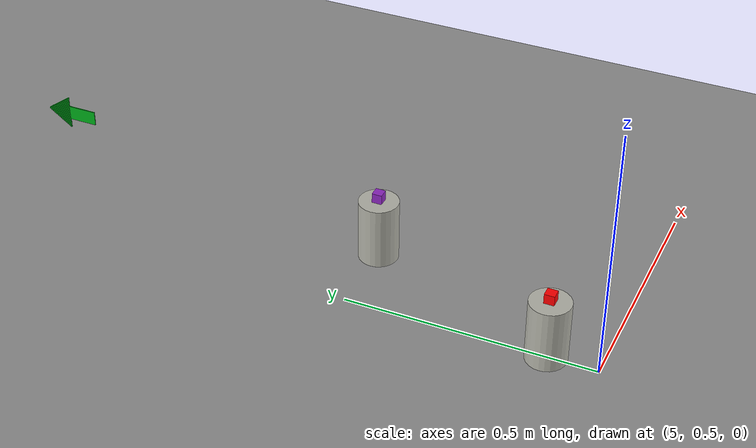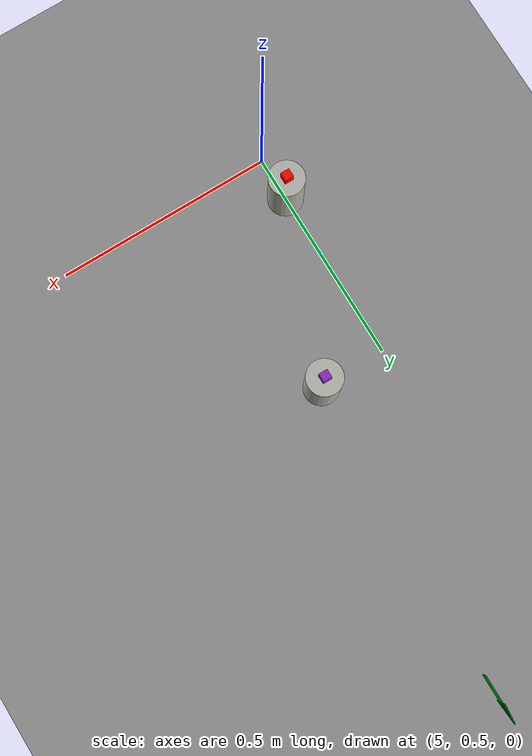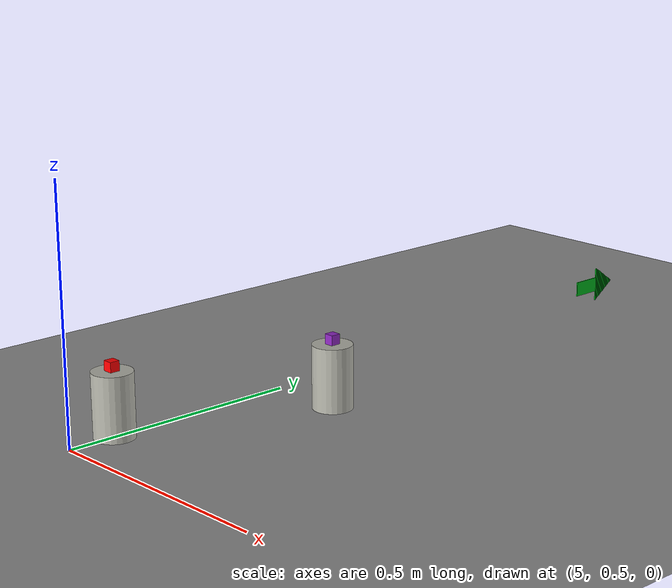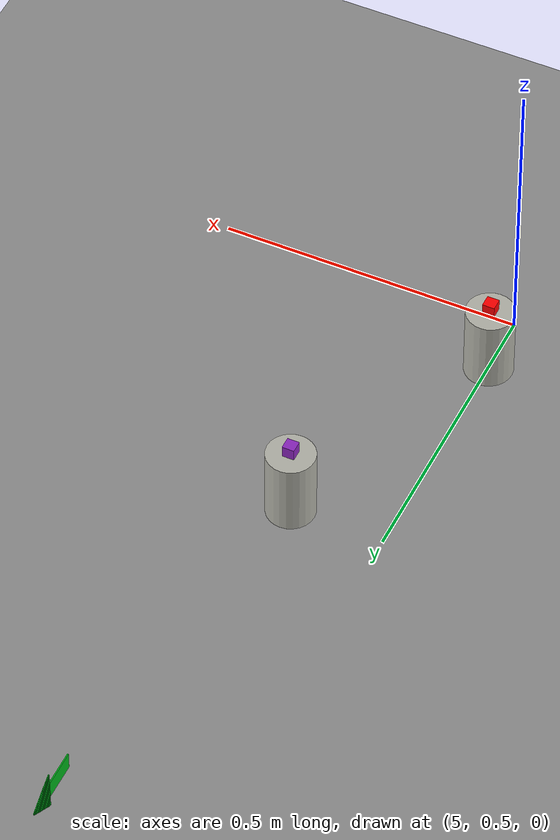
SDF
<sdf version="1.9">
 <world name="ros2_world">
  <model name="ground_plane">
   <static>true</static>
   <link name="link">
    <collision name="collision">
     <geometry><plane><normal>0 0 1</normal><size>30 30</size></plane></geometry>
    </collision>
    <visual name="visual">
     <geometry><plane><normal>0 0 1</normal><size>30 30</size></plane></geometry>
     <material><ambient>0.55 0.55 0.55 1</ambient><diffuse>0.55 0.55 0.55 1</diffuse></material>
    </visual>
   </link>
  </model>
  <model name="flechas">
   <static>true</static>
   <link name="flecha_14">
    <pose>5.1985 1.72 0.115 0 0 1.5708</pose>
    <visual name="p0">
     <pose>-0.025 0 0 0 0 0</pose>
     <geometry><box><size>0.06 0.002 0.03</size></box></geometry>
     <material><ambient>0 0.7 0.1 1</ambient><diffuse>0 0.7 0.1 1</diffuse></material>
    </visual>
    <visual name="p1">
     <pose>0.006 0 0 0 0 0</pose>
     <geometry><box><size>0.002 0.002 0.07</size></box></geometry>
     <material><ambient>0 0.7 0.1 1</ambient><diffuse>0 0.7 0.1 1</diffuse></material>
    </visual>
    <visual name="p2">
     <pose>0.008 0 0 0 0 0</pose>
     <geometry><box><size>0.002 0.002 0.0672</size></box></geometry>
     <material><ambient>0 0.7 0.1 1</ambient><diffuse>0 0.7 0.1 1</diffuse></material>
    </visual>
    <visual name="p3">
     <pose>0.01 0 0 0 0 0</pose>
     <geometry><box><size>0.002 0.002 0.0644</size></box></geometry>
     <material><ambient>0 0.7 0.1 1</ambient><diffuse>0 0.7 0.1 1</diffuse></material>
    </visual>
    <visual name="p4">
     <pose>0.012 0 0 0 0 0</pose>
     <geometry><box><size>0.002 0.002 0.0616</size></box></geometry>
     <material><ambient>0 0.7 0.1 1</ambient><diffuse>0 0.7 0.1 1</diffuse></material>
    </visual>
    <visual name="p5">
     <pose>0.014 0 0 0 0 0</pose>
     <geometry><box><size>0.002 0.002 0.0588</size></box></geometry>
     <material><ambient>0 0.7 0.1 1</ambient><diffuse>0 0.7 0.1 1</diffuse></material>
    </visual>
    <visual name="p6">
     <pose>0.016 0 0 0 0 0</pose>
     <geometry><box><size>0.002 0.002 0.056</size></box></geometry>
     <material><ambient>0 0.7 0.1 1</ambient><diffuse>0 0.7 0.1 1</diffuse></material>
    </visual>
    <visual name="p7">
     <pose>0.018 0 0 0 0 0</pose>
     <geometry><box><size>0.002 0.002 0.0532</size></box></geometry>
     <material><ambient>0 0.7 0.1 1</ambient><diffuse>0 0.7 0.1 1</diffuse></material>
    </visual>
    <visual name="p8">
     <pose>0.02 0 0 0 0 0</pose>
     <geometry><box><size>0.002 0.002 0.0504</size></box></geometry>
     <material><ambient>0 0.7 0.1 1</ambient><diffuse>0 0.7 0.1 1</diffuse></material>
    </visual>
    <visual name="p9">
     <pose>0.022 0 0 0 0 0</pose>
     <geometry><box><size>0.002 0.002 0.0476</size></box></geometry>
     <material><ambient>0 0.7 0.1 1</ambient><diffuse>0 0.7 0.1 1</diffuse></material>
    </visual>
    <visual name="p10">
     <pose>0.024 0 0 0 0 0</pose>
     <geometry><box><size>0.002 0.002 0.0448</size></box></geometry>
     <material><ambient>0 0.7 0.1 1</ambient><diffuse>0 0.7 0.1 1</diffuse></material>
    </visual>
    <visual name="p11">
     <pose>0.026 0 0 0 0 0</pose>
     <geometry><box><size>0.002 0.002 0.042</size></box></geometry>
     <material><ambient>0 0.7 0.1 1</ambient><diffuse>0 0.7 0.1 1</diffuse></material>
    </visual>
    <visual name="p12">
     <pose>0.028 0 0 0 0 0</pose>
     <geometry><box><size>0.002 0.002 0.0392</size></box></geometry>
     <material><ambient>0 0.7 0.1 1</ambient><diffuse>0 0.7 0.1 1</diffuse></material>
    </visual>
    <visual name="p13">
     <pose>0.03 0 0 0 0 0</pose>
     <geometry><box><size>0.002 0.002 0.0364</size></box></geometry>
     <material><ambient>0 0.7 0.1 1</ambient><diffuse>0 0.7 0.1 1</diffuse></material>
    </visual>
    <visual name="p14">
     <pose>0.032 0 0 0 0 0</pose>
     <geometry><box><size>0.002 0.002 0.0336</size></box></geometry>
     <material><ambient>0 0.7 0.1 1</ambient><diffuse>0 0.7 0.1 1</diffuse></material>
    </visual>
    <visual name="p15">
     <pose>0.034 0 0 0 0 0</pose>
     <geometry><box><size>0.002 0.002 0.0308</size></box></geometry>
     <material><ambient>0 0.7 0.1 1</ambient><diffuse>0 0.7 0.1 1</diffuse></material>
    </visual>
    <visual name="p16">
     <pose>0.036 0 0 0 0 0</pose>
     <geometry><box><size>0.002 0.002 0.028</size></box></geometry>
     <material><ambient>0 0.7 0.1 1</ambient><diffuse>0 0.7 0.1 1</diffuse></material>
    </visual>
    <visual name="p17">
     <pose>0.038 0 0 0 0 0</pose>
     <geometry><box><size>0.002 0.002 0.0252</size></box></geometry>
     <material><ambient>0 0.7 0.1 1</ambient><diffuse>0 0.7 0.1 1</diffuse></material>
    </visual>
    <visual name="p18">
     <pose>0.04 0 0 0 0 0</pose>
     <geometry><box><size>0.002 0.002 0.0224</size></box></geometry>
     <material><ambient>0 0.7 0.1 1</ambient><diffuse>0 0.7 0.1 1</diffuse></material>
    </visual>
    <visual name="p19">
     <pose>0.042 0 0 0 0 0</pose>
     <geometry><box><size>0.002 0.002 0.0196</size></box></geometry>
     <material><ambient>0 0.7 0.1 1</ambient><diffuse>0 0.7 0.1 1</diffuse></material>
    </visual>
    <visual name="p20">
     <pose>0.044 0 0 0 0 0</pose>
     <geometry><box><size>0.002 0.002 0.0168</size></box></geometry>
     <material><ambient>0 0.7 0.1 1</ambient><diffuse>0 0.7 0.1 1</diffuse></material>
    </visual>
    <visual name="p21">
     <pose>0.046 0 0 0 0 0</pose>
     <geometry><box><size>0.002 0.002 0.014</size></box></geometry>
     <material><ambient>0 0.7 0.1 1</ambient><diffuse>0 0.7 0.1 1</diffuse></material>
    </visual>
    <visual name="p22">
     <pose>0.048 0 0 0 0 0</pose>
     <geometry><box><size>0.002 0.002 0.0112</size></box></geometry>
     <material><ambient>0 0.7 0.1 1</ambient><diffuse>0 0.7 0.1 1</diffuse></material>
    </visual>
    <visual name="p23">
     <pose>0.05 0 0 0 0 0</pose>
     <geometry><box><size>0.002 0.002 0.0084</size></box></geometry>
     <material><ambient>0 0.7 0.1 1</ambient><diffuse>0 0.7 0.1 1</diffuse></material>
    </visual>
    <visual name="p24">
     <pose>0.052 0 0 0 0 0</pose>
     <geometry><box><size>0.002 0.002 0.0056</size></box></geometry>
     <material><ambient>0 0.7 0.1 1</ambient><diffuse>0 0.7 0.1 1</diffuse></material>
    </visual>
    <visual name="p25">
     <pose>0.054 0 0 0 0 0</pose>
     <geometry><box><size>0.002 0.002 0.0028</size></box></geometry>
     <material><ambient>0 0.7 0.1 1</ambient><diffuse>0 0.7 0.1 1</diffuse></material>
    </visual>
   </link>
  </model>
  <model name="cubo_rojo">
   <pose>5 0.6 0.1387 0 0 0</pose>
   <link name="link">
    <inertial>
     <mass>0.0099</mass>
     <inertia>
      <ixx>6.6000e-07</ixx>
      <iyy>6.6000e-07</iyy>
      <izz>6.6000e-07</izz>
      <ixy>0</ixy>
      <ixz>0</ixz>
      <iyz>0</iyz>
     </inertia>
    </inertial>
    <collision name="colision">
     <geometry><box><size>0.02 0.02 0.02</size></box></geometry>
     <surface><friction><ode><mu>1</mu><mu2>1</mu2></ode></friction></surface>
    </collision>
    <visual name="visual">
     <geometry><box><size>0.02 0.02 0.02</size></box></geometry>
     <material><ambient>1 0 0 1</ambient><diffuse>1 0 0 1</diffuse></material>
    </visual>
   </link>
  </model>
  <model name="soporte_cubo_rojo">
   <static>true</static>
   <pose>5 0.6 0.06425 0 0 0</pose>
   <link name="link">
    <collision name="colision">
     <geometry><cylinder><radius>0.04</radius><length>0.1285</length></cylinder></geometry>
    </collision>
    <visual name="visual">
     <geometry><cylinder><radius>0.04</radius><length>0.1285</length></cylinder></geometry>
     <material><ambient>0.7 0.7 0.66 1</ambient><diffuse>0.7 0.7 0.66 1</diffuse></material>
    </visual>
   </link>
  </model>
  <model name="soporte_distractor_2">
   <static>true</static>
   <pose>5.155 1 0.06425 0 0 0</pose>
   <link name="link">
    <collision name="colision">
     <geometry><cylinder><radius>0.04</radius><length>0.1285</length></cylinder></geometry>
    </collision>
    <visual name="visual">
     <geometry><cylinder><radius>0.04</radius><length>0.1285</length></cylinder></geometry>
     <material><ambient>0.7 0.7 0.66 1</ambient><diffuse>0.7 0.7 0.66 1</diffuse></material>
    </visual>
   </link>
  </model>
  <model name="distractor_violeta_2">
   <pose>5.155 1 0.1387 0 0 0</pose>
   <link name="link">
    <inertial>
     <mass>0.0099</mass>
     <inertia>
      <ixx>6.6000e-07</ixx>
      <iyy>6.6000e-07</iyy>
      <izz>6.6000e-07</izz>
      <ixy>0</ixy>
      <ixz>0</ixz>
      <iyz>0</iyz>
     </inertia>
    </inertial>
    <collision name="colision">
     <geometry><box><size>0.02 0.02 0.02</size></box></geometry>
     <surface><friction><ode><mu>1</mu><mu2>1</mu2></ode></friction></surface>
    </collision>
    <visual name="visual">
     <geometry><box><size>0.02 0.02 0.02</size></box></geometry>
     <material><ambient>0.55 0.15 0.75 1</ambient><diffuse>0.55 0.15 0.75 1</diffuse></material>
    </visual>
   </link>
  </model>
 </world>
</sdf>
